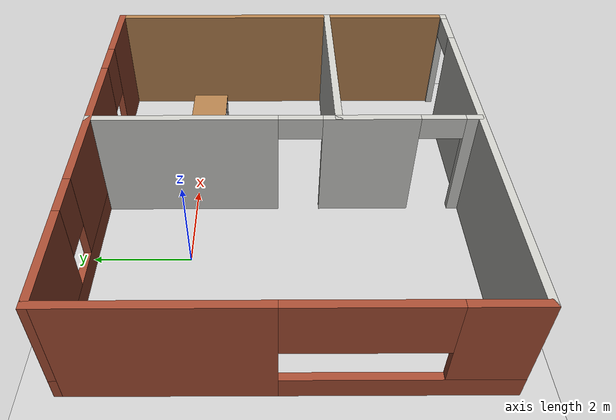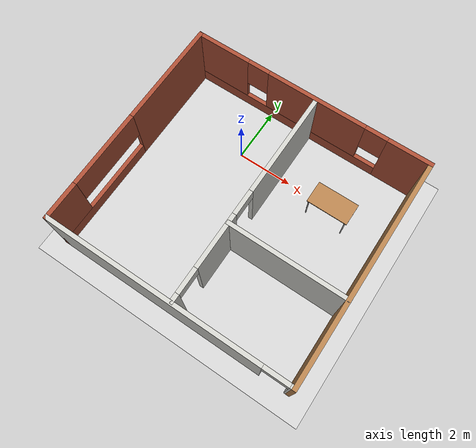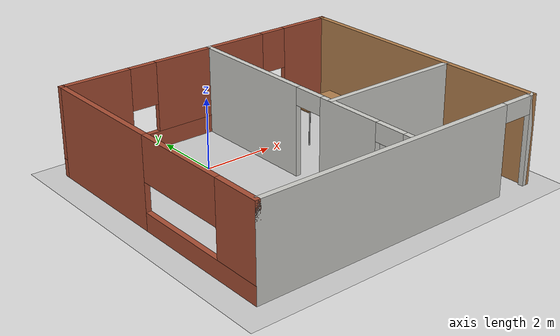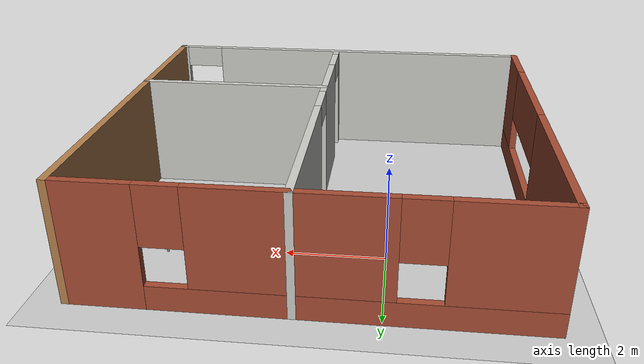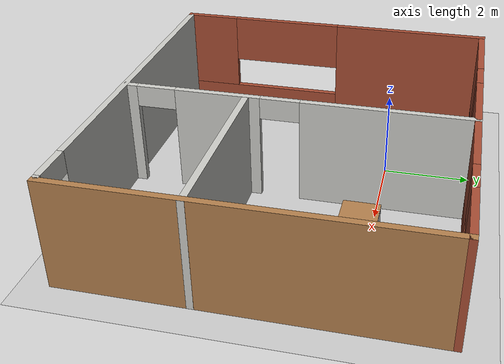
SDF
<sdf version="1.6">
 <world name="default">
  <light name="sun" type="directional">
   <pose>0 0 10 0 -0 0</pose>
   <diffuse>0.8 0.8 0.8 1</diffuse>
   <specular>0.2 0.2 0.2 1</specular>
   <attenuation>
    <range>1000</range>
    <constant>0.9</constant>
    <linear>0.01</linear>
    <quadratic>0.001</quadratic>
   </attenuation>
   <direction>-0.5 0.1 -0.9</direction>
  </light>
  <model name="ground_plane">
   <static>1</static>
   <link name="link">
    <collision name="collision">
     <geometry><plane><normal>0 0 1</normal><size>100 100</size></plane></geometry>
     <surface><friction><ode><mu>100</mu><mu2>50</mu2></ode></friction></surface>
    </collision>
    <visual name="visual">
     <cast_shadows>0</cast_shadows>
     <geometry><plane><normal>0 0 1</normal><size>100 100</size></plane></geometry>
     <material>
      <script><uri>file://media/materials/scripts/gazebo.material</uri><name>Gazebo/Grey</name></script>
     </material>
    </visual>
   </link>
  </model>
  <gravity>0 0 -9.8</gravity>
  <magnetic_field>6e-06 2.3e-05 -4.2e-05</magnetic_field>
  <atmosphere type="adiabatic"/>
  <physics name="default_physics" default="0" type="ode">
   <max_step_size>0.001</max_step_size>
   <real_time_factor>1</real_time_factor>
   <real_time_update_rate>1000</real_time_update_rate>
  </physics>
  <scene><ambient>0.4 0.4 0.4 1</ambient><background>0.7 0.7 0.7 1</background><shadows>1</shadows></scene>
  <spherical_coordinates>
   <surface_model>EARTH_WGS84</surface_model>
   <latitude_deg>0</latitude_deg>
   <longitude_deg>0</longitude_deg>
   <elevation>0</elevation>
   <heading_deg>0</heading_deg>
  </spherical_coordinates>
  <model name="new1">
   <pose>1.343 -1.9455 0 0 -0 0</pose>
   <link name="Wall_0">
    <pose>-4.343 0 0 0 0 -1.5708</pose>
    <visual name="Wall_0_Visual_0">
     <pose>-2.08913 0 1.25 0 -0 0</pose>
     <geometry><box><size>3.86274 0.15 2.5</size></box></geometry>
     <material>
      <script><uri>file://media/materials/scripts/gazebo.material</uri><name>Gazebo/Bricks</name></script>
      <ambient>1 1 1 1</ambient>
     </material>
     <meta><layer>0</layer></meta>
    </visual>
    <collision name="Wall_0_Collision_0">
     <geometry><box><size>3.86274 0.15 2.5</size></box></geometry>
     <pose>-2.08913 0 1.25 0 -0 0</pose>
    </collision>
    <visual name="Wall_0_Visual_1">
     <pose>1.93137 0 0.25 0 -0 0</pose>
     <geometry><box><size>4.17826 0.15 0.5</size></box></geometry>
     <material>
      <script><uri>file://media/materials/scripts/gazebo.material</uri><name>Gazebo/Bricks</name></script>
      <ambient>1 1 1 1</ambient>
     </material>
     <meta><layer>0</layer></meta>
    </visual>
    <collision name="Wall_0_Collision_1">
     <geometry><box><size>4.17826 0.15 0.5</size></box></geometry>
     <pose>1.93137 0 0.25 0 -0 0</pose>
    </collision>
    <visual name="Wall_0_Visual_2">
     <pose>3.33137 0 1.5 0 -0 0</pose>
     <geometry><box><size>1.37826 0.15 2</size></box></geometry>
     <material>
      <script><uri>file://media/materials/scripts/gazebo.material</uri><name>Gazebo/Bricks</name></script>
      <ambient>1 1 1 1</ambient>
     </material>
     <meta><layer>0</layer></meta>
    </visual>
    <collision name="Wall_0_Collision_2">
     <geometry><box><size>1.37826 0.15 2</size></box></geometry>
     <pose>3.33137 0 1.5 0 -0 0</pose>
    </collision>
    <visual name="Wall_0_Visual_3">
     <pose>1.24224 0 1.9 0 -0 0</pose>
     <geometry><box><size>2.8 0.15 1.2</size></box></geometry>
     <material>
      <script><uri>file://media/materials/scripts/gazebo.material</uri><name>Gazebo/Bricks</name></script>
      <ambient>1 1 1 1</ambient>
     </material>
     <meta><layer>0</layer></meta>
    </visual>
    <collision name="Wall_0_Collision_3">
     <geometry><box><size>2.8 0.15 1.2</size></box></geometry>
     <pose>1.24224 0 1.9 0 -0 0</pose>
    </collision>
   </link>
   <link name="Wall_1">
    <pose>-0.0005 -3.9455 0 0 -0 0</pose>
    <visual name="Wall_1_Visual_0">
     <pose>-0.554382 0 1.25 0 -0 0</pose>
     <geometry><box><size>7.72624 0.15 2.5</size></box></geometry>
     <material>
      <script><uri>file://media/materials/scripts/gazebo.material</uri><name>Gazebo/CeilingTiled</name></script>
      <ambient>0.921569 0.807843 0.615686 1</ambient>
     </material>
     <meta><layer>0</layer></meta>
    </visual>
    <collision name="Wall_1_Collision_0">
     <geometry><box><size>7.72624 0.15 2.5</size></box></geometry>
     <pose>-0.554382 0 1.25 0 -0 0</pose>
    </collision>
    <visual name="Wall_1_Visual_1">
     <pose>4.31312 0 1.25 0 -0 0</pose>
     <geometry><box><size>0.208764 0.15 2.5</size></box></geometry>
     <material>
      <script><uri>file://media/materials/scripts/gazebo.material</uri><name>Gazebo/CeilingTiled</name></script>
      <ambient>0.921569 0.807843 0.615686 1</ambient>
     </material>
     <meta><layer>0</layer></meta>
    </visual>
    <collision name="Wall_1_Collision_1">
     <geometry><box><size>0.208764 0.15 2.5</size></box></geometry>
     <pose>4.31312 0 1.25 0 -0 0</pose>
    </collision>
    <visual name="Wall_1_Visual_2">
     <pose>3.75874 0 2.25 0 -0 0</pose>
     <geometry><box><size>0.9 0.15 0.5</size></box></geometry>
     <material>
      <script><uri>file://media/materials/scripts/gazebo.material</uri><name>Gazebo/CeilingTiled</name></script>
      <ambient>0.921569 0.807843 0.615686 1</ambient>
     </material>
     <meta><layer>0</layer></meta>
    </visual>
    <collision name="Wall_1_Collision_2">
     <geometry><box><size>0.9 0.15 0.5</size></box></geometry>
     <pose>3.75874 0 2.25 0 -0 0</pose>
    </collision>
   </link>
   <link name="Wall_2">
    <collision name="Wall_2_Collision">
     <geometry><box><size>8.041 0.15 2.5</size></box></geometry>
     <pose>0 0 1.25 0 -0 0</pose>
    </collision>
    <visual name="Wall_2_Visual">
     <pose>0 0 1.25 0 -0 0</pose>
     <geometry><box><size>8.041 0.15 2.5</size></box></geometry>
     <material>
      <script><uri>file://media/materials/scripts/gazebo.material</uri><name>Gazebo/Wood</name></script>
      <ambient>1 1 1 1</ambient>
     </material>
     <meta><layer>0</layer></meta>
    </visual>
    <pose>4.342 0 0 0 -0 1.5708</pose>
   </link>
   <link name="Wall_3">
    <pose>-0.0005 3.9455 0 0 -0 3.14159</pose>
    <visual name="Wall_3_Visual_0">
     <pose>-3.62411 0 1.25 0 -0 0</pose>
     <geometry><box><size>1.58678 0.15 2.5</size></box></geometry>
     <material>
      <script><uri>file://media/materials/scripts/gazebo.material</uri><name>Gazebo/Bricks</name></script>
      <ambient>1 1 1 1</ambient>
     </material>
     <meta><layer>0</layer></meta>
    </visual>
    <collision name="Wall_3_Collision_0">
     <geometry><box><size>1.58678 0.15 2.5</size></box></geometry>
     <pose>-3.62411 0 1.25 0 -0 0</pose>
    </collision>
    <visual name="Wall_3_Visual_1">
     <pose>0.793389 0 0.25 0 -0 0</pose>
     <geometry><box><size>7.24822 0.15 0.5</size></box></geometry>
     <material>
      <script><uri>file://media/materials/scripts/gazebo.material</uri><name>Gazebo/Bricks</name></script>
      <ambient>1 1 1 1</ambient>
     </material>
     <meta><layer>0</layer></meta>
    </visual>
    <collision name="Wall_3_Collision_1">
     <geometry><box><size>7.24822 0.15 0.5</size></box></geometry>
     <pose>0.793389 0 0.25 0 -0 0</pose>
    </collision>
    <visual name="Wall_3_Visual_2">
     <pose>-0.226304 0 1.5 0 -0 0</pose>
     <geometry><box><size>3.60884 0.15 2</size></box></geometry>
     <material>
      <script><uri>file://media/materials/scripts/gazebo.material</uri><name>Gazebo/Bricks</name></script>
      <ambient>1 1 1 1</ambient>
     </material>
     <meta><layer>0</layer></meta>
    </visual>
    <collision name="Wall_3_Collision_2">
     <geometry><box><size>3.60884 0.15 2</size></box></geometry>
     <pose>-0.226304 0 1.5 0 -0 0</pose>
    </collision>
    <visual name="Wall_3_Visual_3">
     <pose>3.39781 0 1.5 0 -0 0</pose>
     <geometry><box><size>2.03939 0.15 2</size></box></geometry>
     <material>
      <script><uri>file://media/materials/scripts/gazebo.material</uri><name>Gazebo/Bricks</name></script>
      <ambient>1 1 1 1</ambient>
     </material>
     <meta><layer>0</layer></meta>
    </visual>
    <collision name="Wall_3_Collision_3">
     <geometry><box><size>2.03939 0.15 2</size></box></geometry>
     <pose>3.39781 0 1.5 0 -0 0</pose>
    </collision>
    <visual name="Wall_3_Visual_4">
     <pose>-2.43072 0 1.9 0 -0 0</pose>
     <geometry><box><size>0.8 0.15 1.2</size></box></geometry>
     <material>
      <script><uri>file://media/materials/scripts/gazebo.material</uri><name>Gazebo/Bricks</name></script>
      <ambient>1 1 1 1</ambient>
     </material>
     <meta><layer>0</layer></meta>
    </visual>
    <collision name="Wall_3_Collision_4">
     <geometry><box><size>0.8 0.15 1.2</size></box></geometry>
     <pose>-2.43072 0 1.9 0 -0 0</pose>
    </collision>
    <visual name="Wall_3_Visual_5">
     <pose>1.97811 0 1.9 0 -0 0</pose>
     <geometry><box><size>0.8 0.15 1.2</size></box></geometry>
     <material>
      <script><uri>file://media/materials/scripts/gazebo.material</uri><name>Gazebo/Bricks</name></script>
      <ambient>1 1 1 1</ambient>
     </material>
     <meta><layer>0</layer></meta>
    </visual>
    <collision name="Wall_3_Collision_5">
     <geometry><box><size>0.8 0.15 1.2</size></box></geometry>
     <pose>1.97811 0 1.9 0 -0 0</pose>
    </collision>
   </link>
   <link name="Wall_5">
    <pose>0.225 0.0225 0 0 -0 1.5708</pose>
    <visual name="Wall_5_Visual_0">
     <pose>-3.82707 0 1.25 0 -0 0</pose>
     <geometry><box><size>0.341864 0.15 2.5</size></box></geometry>
     <material>
      <script><uri>file://media/materials/scripts/gazebo.material</uri><name>Gazebo/CeilingTiled</name></script>
      <ambient>0.435294 0.796078 0.67451 1</ambient>
     </material>
     <meta><layer>0</layer></meta>
    </visual>
    <collision name="Wall_5_Collision_0">
     <geometry><box><size>0.341864 0.15 2.5</size></box></geometry>
     <pose>-3.82707 0 1.25 0 -0 0</pose>
    </collision>
    <visual name="Wall_5_Visual_1">
     <pose>-1.77195 0 1.25 0 -0 0</pose>
     <geometry><box><size>1.96837 0.15 2.5</size></box></geometry>
     <material>
      <script><uri>file://media/materials/scripts/gazebo.material</uri><name>Gazebo/CeilingTiled</name></script>
      <ambient>0.435294 0.796078 0.67451 1</ambient>
     </material>
     <meta><layer>0</layer></meta>
    </visual>
    <collision name="Wall_5_Collision_1">
     <geometry><box><size>1.96837 0.15 2.5</size></box></geometry>
     <pose>-1.77195 0 1.25 0 -0 0</pose>
    </collision>
    <visual name="Wall_5_Visual_2">
     <pose>2.05512 0 1.25 0 -0 0</pose>
     <geometry><box><size>3.88577 0.15 2.5</size></box></geometry>
     <material>
      <script><uri>file://media/materials/scripts/gazebo.material</uri><name>Gazebo/CeilingTiled</name></script>
      <ambient>0.435294 0.796078 0.67451 1</ambient>
     </material>
     <meta><layer>0</layer></meta>
    </visual>
    <collision name="Wall_5_Collision_2">
     <geometry><box><size>3.88577 0.15 2.5</size></box></geometry>
     <pose>2.05512 0 1.25 0 -0 0</pose>
    </collision>
    <visual name="Wall_5_Visual_3">
     <pose>-3.20614 0 2.25 0 -0 0</pose>
     <geometry><box><size>0.9 0.15 0.5</size></box></geometry>
     <material>
      <script><uri>file://media/materials/scripts/gazebo.material</uri><name>Gazebo/CeilingTiled</name></script>
      <ambient>0.435294 0.796078 0.67451 1</ambient>
     </material>
     <meta><layer>0</layer></meta>
    </visual>
    <collision name="Wall_5_Collision_3">
     <geometry><box><size>0.9 0.15 0.5</size></box></geometry>
     <pose>-3.20614 0 2.25 0 -0 0</pose>
    </collision>
    <visual name="Wall_5_Visual_4">
     <pose>-0.337765 0 2.25 0 -0 0</pose>
     <geometry><box><size>0.9 0.15 0.5</size></box></geometry>
     <material>
      <script><uri>file://media/materials/scripts/gazebo.material</uri><name>Gazebo/CeilingTiled</name></script>
      <ambient>0.435294 0.796078 0.67451 1</ambient>
     </material>
     <meta><layer>0</layer></meta>
    </visual>
    <collision name="Wall_5_Collision_4">
     <geometry><box><size>0.9 0.15 0.5</size></box></geometry>
     <pose>-0.337765 0 2.25 0 -0 0</pose>
    </collision>
   </link>
   <link name="Wall_7">
    <collision name="Wall_7_Collision">
     <geometry><box><size>4.25 0.15 2.5</size></box></geometry>
     <pose>0 0 1.25 0 -0 0</pose>
    </collision>
    <visual name="Wall_7_Visual">
     <pose>0 0 1.25 0 -0 0</pose>
     <geometry><box><size>4.25 0.15 2.5</size></box></geometry>
     <material>
      <script><uri>file://media/materials/scripts/gazebo.material</uri><name>Gazebo/CeilingTiled</name></script>
      <ambient>1 1 1 1</ambient>
     </material>
     <meta><layer>0</layer></meta>
    </visual>
    <pose>2.293 -1.0845 0 0 -0 0</pose>
   </link>
   <static>1</static>
  </model>
  <model name="table">
   <static>1</static>
   <link name="link">
    <collision name="surface">
     <pose>0 0 1 0 -0 0</pose>
     <geometry><box><size>1.5 0.8 0.03</size></box></geometry>
     <surface><friction><ode><mu>0.6</mu><mu2>0.6</mu2></ode></friction></surface>
    </collision>
    <visual name="visual1">
     <pose>0 0 1 0 -0 0</pose>
     <geometry><box><size>1.5 0.8 0.03</size></box></geometry>
     <material>
      <script><uri>file://media/materials/scripts/gazebo.material</uri><name>Gazebo/Wood</name></script>
     </material>
    </visual>
    <collision name="front_left_leg">
     <pose>0.68 0.38 0.5 0 -0 0</pose>
     <geometry><cylinder><radius>0.02</radius><length>1</length></cylinder></geometry>
    </collision>
    <visual name="front_left_leg">
     <pose>0.68 0.38 0.5 0 -0 0</pose>
     <geometry><cylinder><radius>0.02</radius><length>1</length></cylinder></geometry>
     <material>
      <script><uri>file://media/materials/scripts/gazebo.material</uri><name>Gazebo/Grey</name></script>
     </material>
    </visual>
    <collision name="front_right_leg">
     <pose>0.68 -0.38 0.5 0 -0 0</pose>
     <geometry><cylinder><radius>0.02</radius><length>1</length></cylinder></geometry>
    </collision>
    <visual name="front_right_leg">
     <pose>0.68 -0.38 0.5 0 -0 0</pose>
     <geometry><cylinder><radius>0.02</radius><length>1</length></cylinder></geometry>
     <material>
      <script><uri>file://media/materials/scripts/gazebo.material</uri><name>Gazebo/Grey</name></script>
     </material>
    </visual>
    <collision name="back_right_leg">
     <pose>-0.68 -0.38 0.5 0 -0 0</pose>
     <geometry><cylinder><radius>0.02</radius><length>1</length></cylinder></geometry>
    </collision>
    <visual name="back_right_leg">
     <pose>-0.68 -0.38 0.5 0 -0 0</pose>
     <geometry><cylinder><radius>0.02</radius><length>1</length></cylinder></geometry>
     <material>
      <script><uri>file://media/materials/scripts/gazebo.material</uri><name>Gazebo/Grey</name></script>
     </material>
    </visual>
    <collision name="back_left_leg">
     <pose>-0.68 0.38 0.5 0 -0 0</pose>
     <geometry><cylinder><radius>0.02</radius><length>1</length></cylinder></geometry>
    </collision>
    <visual name="back_left_leg">
     <pose>-0.68 0.38 0.5 0 -0 0</pose>
     <geometry><cylinder><radius>0.02</radius><length>1</length></cylinder></geometry>
     <material>
      <script><uri>file://media/materials/scripts/gazebo.material</uri><name>Gazebo/Grey</name></script>
     </material>
    </visual>
   </link>
   <pose>3.70505 -0.175242 0 0 -0 0</pose>
  </model>
 </world>
</sdf>
